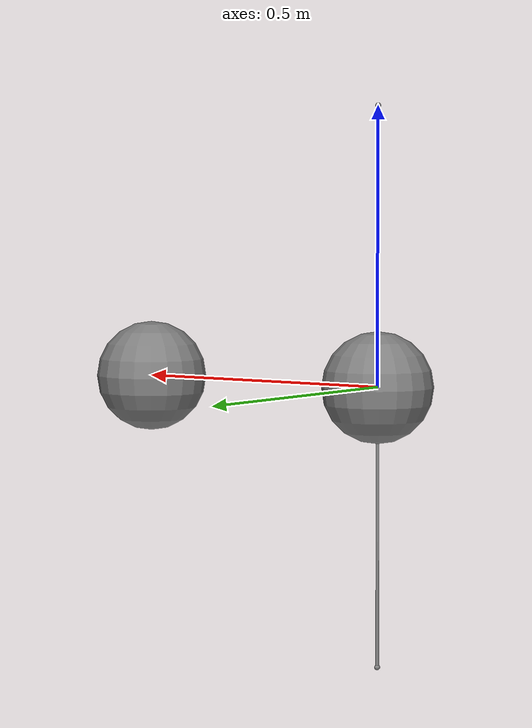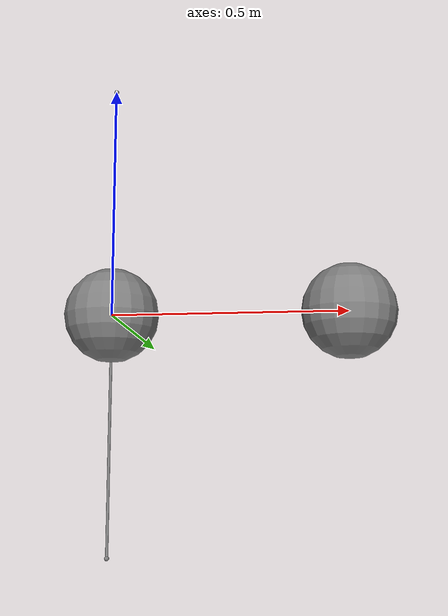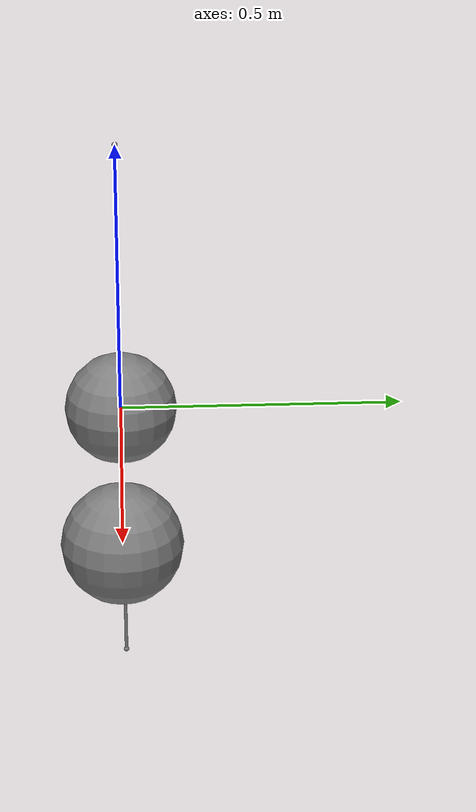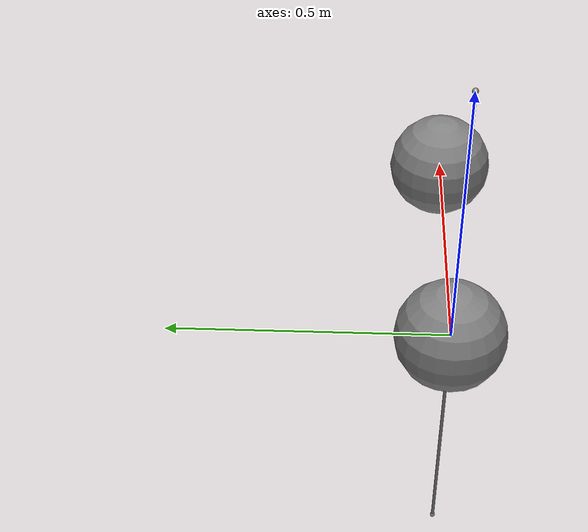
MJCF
<mujoco>
      <worldbody>
        <body name="b1" pos="0 0 0.5">
          <site name="s1" pos="0 0 0"/>
        </body>
        <body name="w1" pos="0 0 0">
          <geom name="g1" type="sphere" size="0.1"/>
        </body>
        <body name="w2" pos="0.5 0 0">
          <geom name="g2" type="sphere" size="0.1"/>
        </body>
        <body name="b2" pos="0 0 -0.5">
          <site name="s2" pos="0 0 0"/>
        </body>
      </worldbody>
      <tendon>
        <spatial name="bad">
          <site site="s1"/>
          <geom geom="g1"/>
          <geom geom="g2"/>
          <site site="s2"/>
        </spatial>
      </tendon>
    </mujoco>
